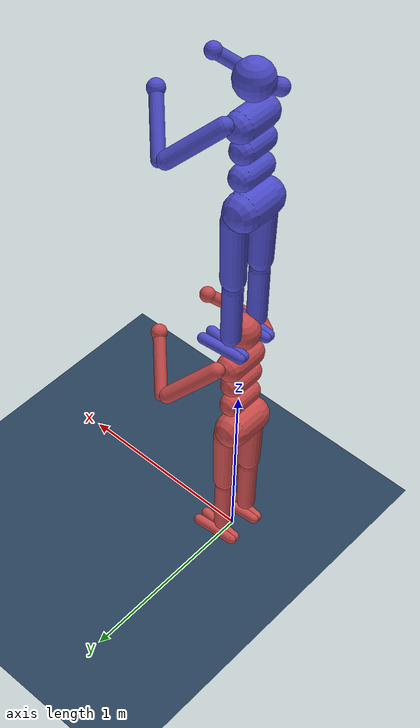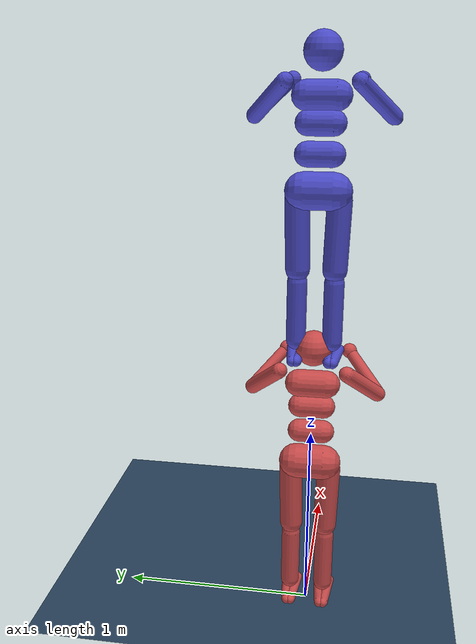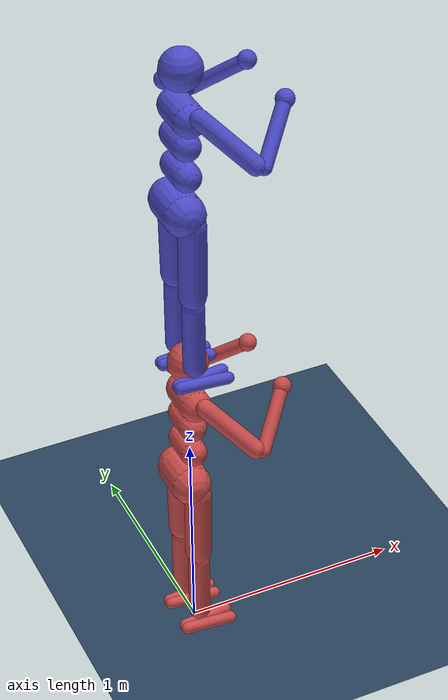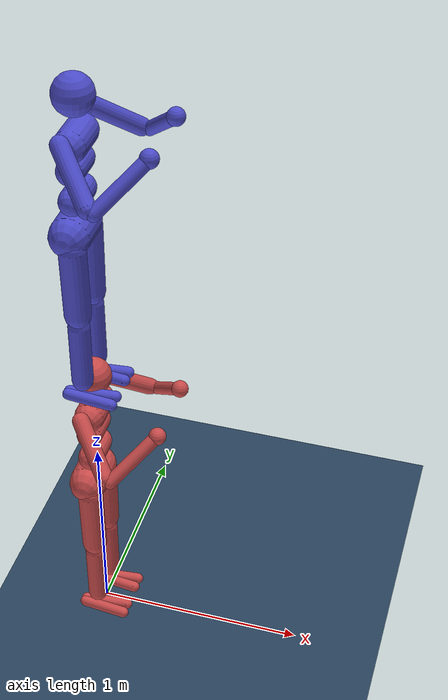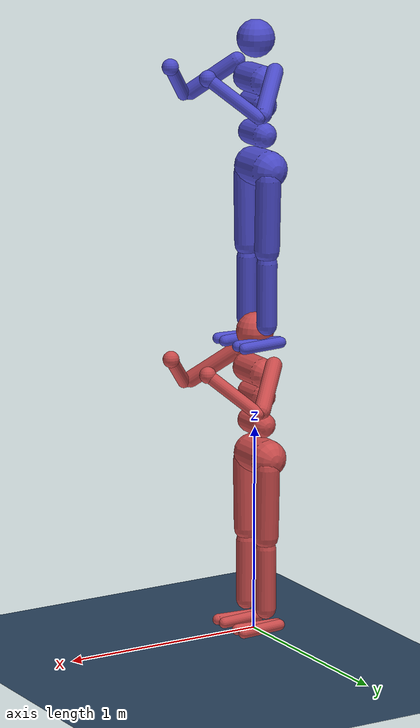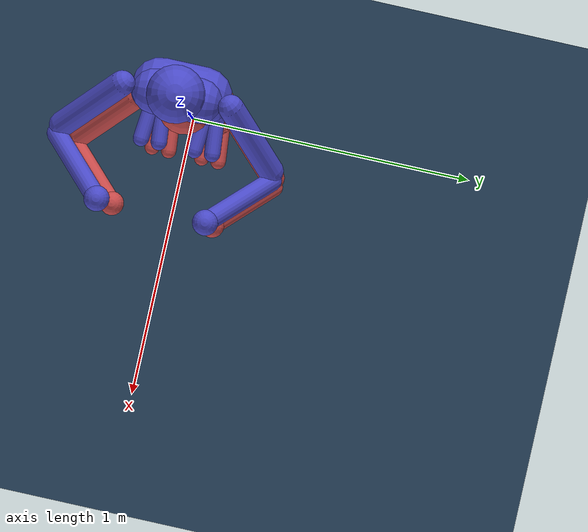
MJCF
<mujoco model="Humanoid Standing on Shoulders">
  <option timestep="0.005"/>
  <compiler autolimits="true"/>

  <visual>
    <map force="0.1" zfar="30"/>
    <rgba haze="0.15 0.25 0.35 1"/>
    <global offwidth="2560" offheight="1440"/>
  </visual>

  <asset>
    <texture type="skybox" builtin="gradient" rgb1=".3 .5 .7" rgb2="0 0 0" width="32" height="512"/>
    <texture name="grid" type="2d" builtin="checker" width="512" height="512" rgb1=".1 .2 .3" rgb2=".2 .3 .4"/>
    <material name="grid" texture="grid" texrepeat="1 1" texuniform="true" reflectance=".2"/>
    <material name="red" rgba="0.8 0.3 0.3 1"/>
    <material name="green" rgba="0.3 0.8 0.3 1"/>
    <material name="blue" rgba="0.3 0.3 0.8 1"/>
  </asset>

  <worldbody>
    <!-- Ground -->
    <geom name="ground" type="plane" size="50 50 0.1" material="grid" condim="3"/>

    <light directional="true" diffuse="0.6 0.6 0.6" specular="0.3 0.3 0.3" pos="0 0 4" dir="0 0 -1"/>
    <light name="spotlight" pos="0 -4 3" dir="0 0.5 -1" diffuse=".8 .8 .8" directional="true"/>

    <!-- Bottom humanoid 1 (Red) - positioned so shoulders touch -->
    <body name="bottom_shoulder_bot" pos="0 0 1">
      <freejoint name="bottom_shoulder_bot_root"/>
      <body name="bottom_shoulder_bot_torso" pos="0 0 0.282">
        <geom name="bottom_shoulder_bot_torso" fromto="0 -.07 0 0 .07 0" size=".07" type="capsule" material="red"/>
        <geom name="bottom_shoulder_bot_waist_upper" fromto="-.01 -.06 -.12 -.01 .06 -.12" size=".06" type="capsule" material="red"/>

        <!-- Head -->
        <body name="bottom_shoulder_bot_head" pos="0 0 .19">
          <geom name="bottom_shoulder_bot_head" type="sphere" size=".09" material="red"/>
        </body>

        <!-- Right Arm -->
        <body name="bottom_shoulder_bot_upper_arm_right" pos="0 -.17 .06">
          <joint name="bottom_shoulder_bot_shoulder1_right" type="hinge" axis="2 1 1" range="-85 60"/>
          <joint name="bottom_shoulder_bot_shoulder2_right" type="hinge" axis="0 -1 1" range="-85 60"/>
          <geom name="bottom_shoulder_bot_upper_arm_right" fromto="0 0 0 .16 -.16 -.16" size=".04" type="capsule" material="red"/>
          <body name="bottom_shoulder_bot_lower_arm_right" pos=".18 -.18 -.18">
            <joint name="bottom_shoulder_bot_elbow_right" type="hinge" axis="0 -1 1" range="-100 50"/>
            <geom name="bottom_shoulder_bot_lower_arm_right" fromto=".01 .01 .01 .17 .17 .17" size=".031" type="capsule" material="red"/>
            <body name="bottom_shoulder_bot_hand_right" pos=".18 .18 .18">
              <geom name="bottom_shoulder_bot_hand_right" type="sphere" size=".04" material="red"/>
            </body>
          </body>
        </body>

        <!-- Left Arm -->
        <body name="bottom_shoulder_bot_upper_arm_left" pos="0 .17 .06">
          <joint name="bottom_shoulder_bot_shoulder1_left" type="hinge" axis="-2 1 -1" range="-85 60"/>
          <joint name="bottom_shoulder_bot_shoulder2_left" type="hinge" axis="0 -1 -1" range="-85 60"/>
          <geom name="bottom_shoulder_bot_upper_arm_left" fromto="0 0 0 .16 .16 -.16" size=".04" type="capsule" material="red"/>
          <body name="bottom_shoulder_bot_lower_arm_left" pos=".18 .18 -.18">
            <joint name="bottom_shoulder_bot_elbow_left" type="hinge" axis="0 -1 -1" range="-100 50"/>
            <geom name="bottom_shoulder_bot_lower_arm_left" fromto=".01 -.01 .01 .17 -.17 .17" size=".031" type="capsule" material="red"/>
            <body name="bottom_shoulder_bot_hand_left" pos=".18 -.18 .18">
              <geom name="bottom_shoulder_bot_hand_left" type="sphere" size=".04" material="red"/>
            </body>
          </body>
        </body>

        <!-- Lower Body -->
        <body name="bottom_shoulder_bot_waist_lower" pos="-.01 0 -.26">
          <geom name="bottom_shoulder_bot_waist_lower" fromto="0 -.06 0 0 .06 0" size=".06" type="capsule" material="red"/>
          <joint name="bottom_shoulder_bot_abdomen_z" pos="0 0 .065" axis="0 0 1" range="-45 45"/>
          <joint name="bottom_shoulder_bot_abdomen_y" pos="0 0 .065" axis="0 1 0" range="-75 30"/>
          <body name="bottom_shoulder_bot_pelvis" pos="0 0 -.165">
            <joint name="bottom_shoulder_bot_abdomen_x" pos="0 0 .1" axis="1 0 0" range="-35 35"/>
            <geom name="bottom_shoulder_bot_butt" fromto="-.02 -.07 0 -.02 .07 0" size=".09" type="capsule" material="red"/>

            <!-- Right Leg -->
            <body name="bottom_shoulder_bot_thigh_right" pos="0 -.1 -.04">
              <joint name="bottom_shoulder_bot_hip_x_right" type="hinge" axis="1 0 0" range="-30 10"/>
              <joint name="bottom_shoulder_bot_hip_z_right" type="hinge" axis="0 0 1" range="-60 35"/>
              <joint name="bottom_shoulder_bot_hip_y_right" type="hinge" axis="0 1 0" range="-150 20"/>
              <geom name="bottom_shoulder_bot_thigh_right" fromto="0 0 0 0 .01 -.34" size=".06" type="capsule" material="red"/>
              <body name="bottom_shoulder_bot_shin_right" pos="0 .01 -.4">
                <joint name="bottom_shoulder_bot_knee_right" type="hinge" axis="0 -1 0" range="-160 2"/>
                <geom name="bottom_shoulder_bot_shin_right" fromto="0 0 0 0 0 -.3" size=".049" type="capsule" material="red"/>
                <body name="bottom_shoulder_bot_foot_right" pos="0 0 -.39">
                  <joint name="bottom_shoulder_bot_ankle_y_right" type="hinge" pos="0 0 .08" axis="0 1 0" range="-50 50"/>
                  <joint name="bottom_shoulder_bot_ankle_x_right" type="hinge" pos="0 0 .04" axis="1 0 .5" range="-50 50"/>
                  <geom name="bottom_shoulder_bot_foot1_right" fromto="-.07 -.01 0 .14 -.03 0" size=".027" type="capsule" material="red"/>
                  <geom name="bottom_shoulder_bot_foot2_right" fromto="-.07 .01 0 .14 .03 0" size=".027" type="capsule" material="red"/>
                </body>
              </body>
            </body>

            <!-- Left Leg -->
            <body name="bottom_shoulder_bot_thigh_left" pos="0 .1 -.04">
              <joint name="bottom_shoulder_bot_hip_x_left" type="hinge" axis="-1 0 0" range="-30 10"/>
              <joint name="bottom_shoulder_bot_hip_z_left" type="hinge" axis="0 0 -1" range="-60 35"/>
              <joint name="bottom_shoulder_bot_hip_y_left" type="hinge" axis="0 1 0" range="-150 20"/>
              <geom name="bottom_shoulder_bot_thigh_left" fromto="0 0 0 0 -.01 -.34" size=".06" type="capsule" material="red"/>
              <body name="bottom_shoulder_bot_shin_left" pos="0 -.01 -.4">
                <joint name="bottom_shoulder_bot_knee_left" type="hinge" axis="0 -1 0" range="-160 2"/>
                <geom name="bottom_shoulder_bot_shin_left" fromto="0 0 0 0 0 -.3" size=".049" type="capsule" material="red"/>
                <body name="bottom_shoulder_bot_foot_left" pos="0 0 -.39">
                  <joint name="bottom_shoulder_bot_ankle_y_left" type="hinge" pos="0 0 .08" axis="0 1 0" range="-50 50"/>
                  <joint name="bottom_shoulder_bot_ankle_x_left" type="hinge" pos="0 0 .04" axis="-1 0 -.5" range="-50 50"/>
                  <geom name="bottom_shoulder_bot_foot1_left" fromto="-.07 -.01 0 .14 -.03 0" size=".027" type="capsule" material="red"/>
                  <geom name="bottom_shoulder_bot_foot2_left" fromto="-.07 .01 0 .14 .03 0" size=".027" type="capsule" material="red"/>
                </body>
              </body>
            </body>
          </body>
        </body>
      </body>
    </body>

    <!-- top_shoulder_bot humanoid (Blue) - positioned centered above both base robots -->
    <body name="top_shoulder_bot" pos="0 0 2.4">
      <freejoint name="top_shoulder_bot_root"/>
      <body name="top_shoulder_bot_torso" pos="0 0 0.282">
        <geom name="top_shoulder_bot_torso" fromto="0 -.07 0 0 .07 0" size=".07" type="capsule" material="blue"/>
        <geom name="top_shoulder_bot_waist_upper" fromto="-.01 -.06 -.12 -.01 .06 -.12" size=".06" type="capsule" material="blue"/>

        <!-- Head -->
        <body name="top_shoulder_bot_head" pos="0 0 .19">
          <geom name="top_shoulder_bot_head" type="sphere" size=".09" material="blue"/>
        </body>

        <!-- Arms -->
        <body name="top_shoulder_bot_upper_arm_right" pos="0 -.17 .06">
          <joint name="top_shoulder_bot_shoulder1_right" type="hinge" axis="2 1 1" range="-85 60"/>
          <joint name="top_shoulder_bot_shoulder2_right" type="hinge" axis="0 -1 1" range="-85 60"/>
          <geom name="top_shoulder_bot_upper_arm_right" fromto="0 0 0 .16 -.16 -.16" size=".04" type="capsule" material="blue"/>
          <body name="top_shoulder_bot_lower_arm_right" pos=".18 -.18 -.18">
            <joint name="top_shoulder_bot_elbow_right" type="hinge" axis="0 -1 1" range="-100 50"/>
            <geom name="top_shoulder_bot_lower_arm_right" fromto=".01 .01 .01 .17 .17 .17" size=".031" type="capsule" material="blue"/>
            <body name="top_shoulder_bot_hand_right" pos=".18 .18 .18">
              <geom name="top_shoulder_bot_hand_right" type="sphere" size=".04" material="blue"/>
            </body>
          </body>
        </body>

        <body name="top_shoulder_bot_upper_arm_left" pos="0 .17 .06">
          <joint name="top_shoulder_bot_shoulder1_left" type="hinge" axis="-2 1 -1" range="-85 60"/>
          <joint name="top_shoulder_bot_shoulder2_left" type="hinge" axis="0 -1 -1" range="-85 60"/>
          <geom name="top_shoulder_bot_upper_arm_left" fromto="0 0 0 .16 .16 -.16" size=".04" type="capsule" material="blue"/>
          <body name="top_shoulder_bot_lower_arm_left" pos=".18 .18 -.18">
            <joint name="top_shoulder_bot_elbow_left" type="hinge" axis="0 -1 -1" range="-100 50"/>
            <geom name="top_shoulder_bot_lower_arm_left" fromto=".01 -.01 .01 .17 -.17 .17" size=".031" type="capsule" material="blue"/>
            <body name="top_shoulder_bot_hand_left" pos=".18 -.18 .18">
              <geom name="top_shoulder_bot_hand_left" type="sphere" size=".04" material="blue"/>
            </body>
          </body>
        </body>

        <!-- Lower Body -->
        <body name="top_shoulder_bot_waist_lower" pos="-.01 0 -.26">
          <geom name="top_shoulder_bot_waist_lower" fromto="0 -.06 0 0 .06 0" size=".06" type="capsule" material="blue"/>
          <joint name="top_shoulder_bot_abdomen_z" pos="0 0 .065" axis="0 0 1" range="-45 45"/>
          <joint name="top_shoulder_bot_abdomen_y" pos="0 0 .065" axis="0 1 0" range="-75 30"/>
          <body name="top_shoulder_bot_pelvis" pos="0 0 -.165">
            <joint name="top_shoulder_bot_abdomen_x" pos="0 0 .1" axis="1 0 0" range="-35 35"/>
            <geom name="top_shoulder_bot_butt" fromto="-.02 -.07 0 -.02 .07 0" size=".09" type="capsule" material="blue"/>

            <!-- Right Leg -->
            <body name="top_shoulder_bot_thigh_right" pos="0 -.1 -.04">
              <joint name="top_shoulder_bot_hip_x_right" type="hinge" axis="1 0 0" range="-30 10"/>
              <joint name="top_shoulder_bot_hip_z_right" type="hinge" axis="0 0 1" range="-60 35"/>
              <joint name="top_shoulder_bot_hip_y_right" type="hinge" axis="0 1 0" range="-150 20"/>
              <geom name="top_shoulder_bot_thigh_right" fromto="0 0 0 0 .01 -.34" size=".06" type="capsule" material="blue"/>
              <body name="top_shoulder_bot_shin_right" pos="0 .01 -.4">
                <joint name="top_shoulder_bot_knee_right" type="hinge" axis="0 -1 0" range="-160 2"/>
                <geom name="top_shoulder_bot_shin_right" fromto="0 0 0 0 0 -.3" size=".049" type="capsule" material="blue"/>
                <body name="top_shoulder_bot_foot_right" pos="0 0 -.39">
                  <joint name="top_shoulder_bot_ankle_y_right" type="hinge" pos="0 0 .08" axis="0 1 0" range="-50 50"/>
                  <joint name="top_shoulder_bot_ankle_x_right" type="hinge" pos="0 0 .04" axis="1 0 .5" range="-50 50"/>
                  <geom name="top_shoulder_bot_foot1_right" fromto="-.07 -.01 0 .14 -.03 0" size=".027" type="capsule" material="blue"/>
                  <geom name="top_shoulder_bot_foot2_right" fromto="-.07 .01 0 .14 .03 0" size=".027" type="capsule" material="blue"/>
                </body>
              </body>
            </body>

            <!-- Left Leg -->
            <body name="top_shoulder_bot_thigh_left" pos="0 .1 -.04">
              <joint name="top_shoulder_bot_hip_x_left" type="hinge" axis="-1 0 0" range="-30 10"/>
              <joint name="top_shoulder_bot_hip_z_left" type="hinge" axis="0 0 -1" range="-60 35"/>
              <joint name="top_shoulder_bot_hip_y_left" type="hinge" axis="0 1 0" range="-150 20"/>
              <geom name="top_shoulder_bot_thigh_left" fromto="0 0 0 0 -.01 -.34" size=".06" type="capsule" material="blue"/>
              <body name="top_shoulder_bot_shin_left" pos="0 -.01 -.4">
                <joint name="top_shoulder_bot_knee_left" type="hinge" axis="0 -1 0" range="-160 2"/>
                <geom name="top_shoulder_bot_shin_left" fromto="0 0 0 0 0 -.3" size=".049" type="capsule" material="blue"/>
                <body name="top_shoulder_bot_foot_left" pos="0 0 -.39">
                  <joint name="top_shoulder_bot_ankle_y_left" type="hinge" pos="0 0 .08" axis="0 1 0" range="-50 50"/>
                  <joint name="top_shoulder_bot_ankle_x_left" type="hinge" pos="0 0 .04" axis="-1 0 -.5" range="-50 50"/>
                  <geom name="top_shoulder_bot_foot1_left" fromto="-.07 -.01 0 .14 -.03 0" size=".027" type="capsule" material="blue"/>
                  <geom name="top_shoulder_bot_foot2_left" fromto="-.07 .01 0 .14 .03 0" size=".027" type="capsule" material="blue"/>
                </body>
              </body>
            </body>
          </body>
        </body>
      </body>
    </body>
  </worldbody>

  <equality>
    <!-- Weld top_shoulder_bot robot's feet to base robots' shoulders -->
    <weld name="weld_top_shoulder_bot_right" body1="top_shoulder_bot_foot_right" body2="bottom_shoulder_bot_upper_arm_right"
          anchor="0 0 0" solref="0.01 1" solimp="0.9 0.95 0.001"/>
    <weld name="weld_top_shoulder_bot_left" body1="top_shoulder_bot_foot_left" body2="bottom_shoulder_bot_upper_arm_left"
          anchor="0 0 0" solref="0.01 1" solimp="0.9 0.95 0.001"/>
  </equality>

  <!-- COMPLETE ACTUATORS FOR ALL JOINTS -->
  <actuator>
    <!-- Base Humanoid 1 (Red) Actuators -->
    <position name="bottom_shoulder_bot_abdomen_y" joint="bottom_shoulder_bot_abdomen_y" kp="100"/>
    <position name="bottom_shoulder_bot_abdomen_z" joint="bottom_shoulder_bot_abdomen_z" kp="100"/>
    <position name="bottom_shoulder_bot_abdomen_x" joint="bottom_shoulder_bot_abdomen_x" kp="100"/>
    <position name="bottom_shoulder_bot_hip_x_right" joint="bottom_shoulder_bot_hip_x_right" kp="100"/>
    <position name="bottom_shoulder_bot_hip_z_right" joint="bottom_shoulder_bot_hip_z_right" kp="100"/>
    <position name="bottom_shoulder_bot_hip_y_right" joint="bottom_shoulder_bot_hip_y_right" kp="100"/>
    <position name="bottom_shoulder_bot_knee_right" joint="bottom_shoulder_bot_knee_right" kp="80"/>
    <position name="bottom_shoulder_bot_ankle_x_right" joint="bottom_shoulder_bot_ankle_x_right" kp="50"/>
    <position name="bottom_shoulder_bot_ankle_y_right" joint="bottom_shoulder_bot_ankle_y_right" kp="50"/>
    <position name="bottom_shoulder_bot_hip_x_left" joint="bottom_shoulder_bot_hip_x_left" kp="100"/>
    <position name="bottom_shoulder_bot_hip_z_left" joint="bottom_shoulder_bot_hip_z_left" kp="100"/>
    <position name="bottom_shoulder_bot_hip_y_left" joint="bottom_shoulder_bot_hip_y_left" kp="100"/>
    <position name="bottom_shoulder_bot_knee_left" joint="bottom_shoulder_bot_knee_left" kp="80"/>
    <position name="bottom_shoulder_bot_ankle_x_left" joint="bottom_shoulder_bot_ankle_x_left" kp="50"/>
    <position name="bottom_shoulder_bot_ankle_y_left" joint="bottom_shoulder_bot_ankle_y_left" kp="50"/>
    <position name="bottom_shoulder_bot_shoulder1_right" joint="bottom_shoulder_bot_shoulder1_right" kp="50"/>
    <position name="bottom_shoulder_bot_shoulder2_right" joint="bottom_shoulder_bot_shoulder2_right" kp="50"/>
    <position name="bottom_shoulder_bot_elbow_right" joint="bottom_shoulder_bot_elbow_right" kp="50"/>
    <position name="bottom_shoulder_bot_shoulder1_left" joint="bottom_shoulder_bot_shoulder1_left" kp="50"/>
    <position name="bottom_shoulder_bot_shoulder2_left" joint="bottom_shoulder_bot_shoulder2_left" kp="50"/>
    <position name="bottom_shoulder_bot_elbow_left" joint="bottom_shoulder_bot_elbow_left" kp="50"/>

    <!-- top_shoulder_bot Humanoid (Blue) Actuators -->
    <position name="top_shoulder_bot_abdomen_y" joint="top_shoulder_bot_abdomen_y" kp="100"/>
    <position name="top_shoulder_bot_abdomen_z" joint="top_shoulder_bot_abdomen_z" kp="100"/>
    <position name="top_shoulder_bot_abdomen_x" joint="top_shoulder_bot_abdomen_x" kp="100"/>
    <position name="top_shoulder_bot_hip_x_right" joint="top_shoulder_bot_hip_x_right" kp="100"/>
    <position name="top_shoulder_bot_hip_z_right" joint="top_shoulder_bot_hip_z_right" kp="100"/>
    <position name="top_shoulder_bot_hip_y_right" joint="top_shoulder_bot_hip_y_right" kp="100"/>
    <position name="top_shoulder_bot_knee_right" joint="top_shoulder_bot_knee_right" kp="80"/>
    <position name="top_shoulder_bot_ankle_x_right" joint="top_shoulder_bot_ankle_x_right" kp="50"/>
    <position name="top_shoulder_bot_ankle_y_right" joint="top_shoulder_bot_ankle_y_right" kp="50"/>
    <position name="top_shoulder_bot_hip_x_left" joint="top_shoulder_bot_hip_x_left" kp="100"/>
    <position name="top_shoulder_bot_hip_z_left" joint="top_shoulder_bot_hip_z_left" kp="100"/>
    <position name="top_shoulder_bot_hip_y_left" joint="top_shoulder_bot_hip_y_left" kp="100"/>
    <position name="top_shoulder_bot_knee_left" joint="top_shoulder_bot_knee_left" kp="80"/>
    <position name="top_shoulder_bot_ankle_x_left" joint="top_shoulder_bot_ankle_x_left" kp="50"/>
    <position name="top_shoulder_bot_ankle_y_left" joint="top_shoulder_bot_ankle_y_left" kp="50"/>
    <position name="top_shoulder_bot_shoulder1_right" joint="top_shoulder_bot_shoulder1_right" kp="50"/>
    <position name="top_shoulder_bot_shoulder2_right" joint="top_shoulder_bot_shoulder2_right" kp="50"/>
    <position name="top_shoulder_bot_elbow_right" joint="top_shoulder_bot_elbow_right" kp="50"/>
    <position name="top_shoulder_bot_shoulder1_left" joint="top_shoulder_bot_shoulder1_left" kp="50"/>
    <position name="top_shoulder_bot_shoulder2_left" joint="top_shoulder_bot_shoulder2_left" kp="50"/>
    <position name="top_shoulder_bot_elbow_left" joint="top_shoulder_bot_elbow_left" kp="50"/>
  </actuator>
</mujoco>
